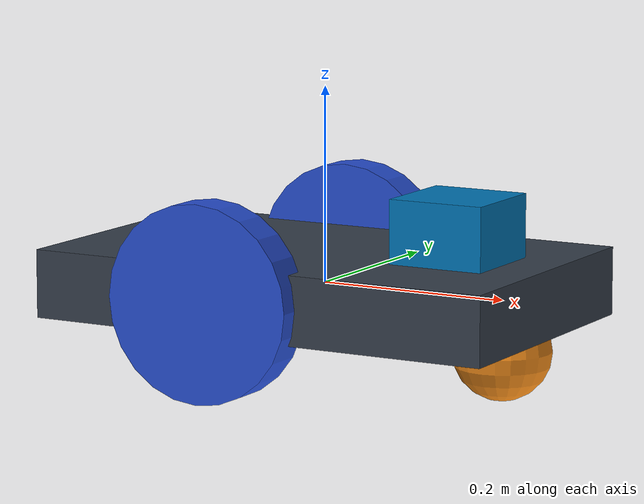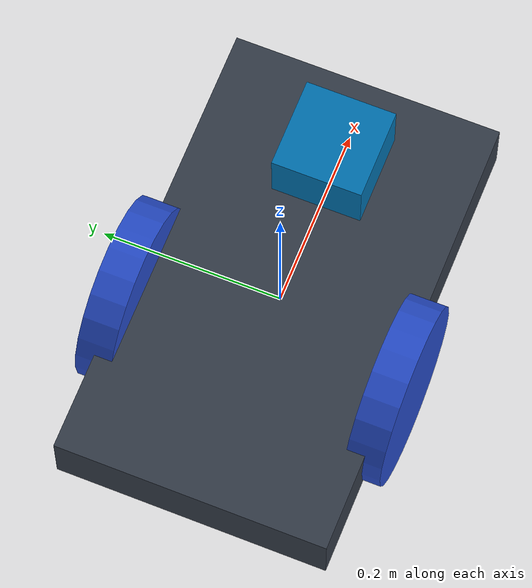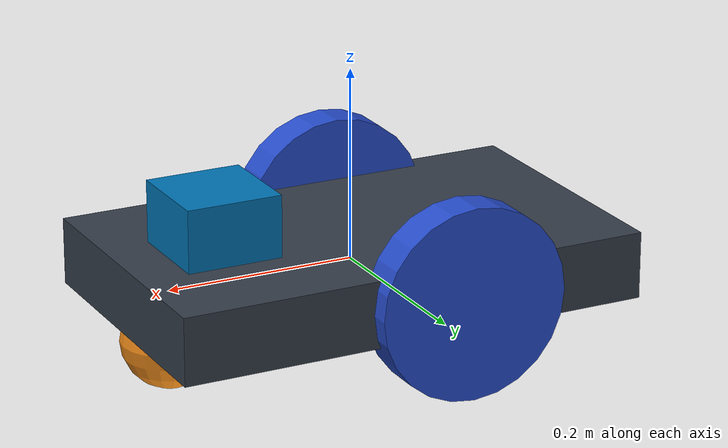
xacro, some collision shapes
<?xml version="1.0" ?>

<robot name="robot" xmlns:xacro="https://www.ros.org/wiki/xacro" >

  <xacro:property name="cameraSize" value="0.05"/>
  <xacro:property name="cameraMass" value="0.1"/>

  <material name="black">
    <color rgba="0.0 0.0 0.0 1.0"/>
  </material>
  <material name="blue">
    <color rgba="0.203125 0.23828125 0.28515625 1.0"/>
  </material>
  <material name="green">
    <color rgba="0.0 0.8 0.0 1.0"/>
  </material>
  <material name="grey">
    <color rgba="0.2 0.2 0.2 1.0"/>
  </material>
  <material name="orange">
    <color rgba="1.0 0.423529411765 0.0392156862745 1.0"/>
  </material>
  <material name="brown">
    <color rgba="0.870588235294 0.811764705882 0.764705882353 1.0"/>
  </material>
  <material name="red">
    <color rgba="0.80078125 0.12890625 0.1328125 1.0"/>
  </material>
  <material name="white">
    <color rgba="1.0 1.0 1.0 1.0"/>
  </material>

  <gazebo reference="link_chassis">
    <material>Gazebo/Orange</material>
  </gazebo>
  <gazebo reference="link_left_wheel">
    <material>Gazebo/Blue</material>
  </gazebo>
  <gazebo reference="link_right_wheel">
    <material>Gazebo/Blue</material>
  </gazebo>

  <link name="link_chassis">
    <!-- pose and inertial -->
    <pose>0 0 0.1 0 0 0</pose>

    <inertial>
      <mass value="5"/>
      <origin rpy="0 0 0" xyz="0 0 0.1"/>
      <inertia ixx="0.0395416666667" ixy="0" ixz="0" iyy="0.106208333333" iyz="0" izz="0.106208333333"/>
    </inertial>

    <collision name="collision_chassis">
      <geometry>
        <box size="0.5 0.3 0.07"/>
      </geometry>
    </collision>

    <visual>
      <origin rpy="0 0 0" xyz="0 0 0"/>
      <geometry>
        <box size="0.5 0.3 0.07"/>
      </geometry>
      <material name="blue"/>
    </visual>

    <!-- caster front -->
    <collision name="caster_front_collision">
      <origin rpy=" 0 0 0" xyz="0.35 0 -0.05"/>
      <geometry>
        <sphere radius="0.05"/>
      </geometry>
      <surface>
        <friction>
          <ode>
            <mu>0</mu>
            <mu2>0</mu2>
            <slip1>1.0</slip1>
            <slip2>1.0</slip2>
          </ode>
        </friction>
      </surface>
    </collision>
    <visual name="caster_front_visual">
      <origin rpy=" 0 0 0" xyz="0.2 0 -0.05"/>
      <geometry>
        <sphere radius="0.05"/>
      </geometry>
    </visual>
    </link>

  <!-- Create wheel right -->

  <link name="link_right_wheel">
    <inertial>
      <mass value="0.2"/>
      <origin rpy="0 1.5707 1.5707" xyz="0 0 0"/>
      <inertia ixx="0.00052666666" ixy="0" ixz="0" iyy="0.00052666666" iyz="0" izz="0.001"/>
    </inertial>

    <collision name="link_right_wheel_collision">
      <origin rpy="0 1.5707 1.5707" xyz="0 0 0" />
      <geometry>
        <cylinder length="0.04" radius="0.1"/>
      </geometry>
    </collision>

    <visual name="link_right_wheel_visual">
      <origin rpy="0 1.5707 1.5707" xyz="0 0 0"/>
      <geometry>
        <cylinder length="0.04" radius="0.1"/>
      </geometry>
    </visual>

  </link>

  <!--   Joint for right wheel  -->
  <joint name="joint_right_wheel" type="continuous">
    <origin rpy="0 0 0" xyz="-0.05 0.15 0"/>
    <child link="link_right_wheel" />
    <parent link="link_chassis"/>
    <axis rpy="0 0 0" xyz="0 1 0"/>
    <limit effort="10000" velocity="1000"/>
    <joint_properties damping="1.0" friction="1.0" />
  </joint>

  <!-- Left Wheel link -->

  <link name="link_left_wheel">
    <inertial>
      <mass value="0.2"/>
      <origin rpy="0 1.5707 1.5707" xyz="0 0 0"/>
      <inertia ixx="0.00052666666" ixy="0" ixz="0" iyy="0.00052666666" iyz="0" izz="0.001"/>
    </inertial>

    <collision name="link_left_wheel_collision">
      <origin rpy="0 1.5707 1.5707" xyz="0 0 0" />
      <geometry>
        <cylinder length="0.04" radius="0.1"/>
      </geometry>
    </collision>

    <visual name="link_left_wheel_visual">
      <origin rpy="0 1.5707 1.5707" xyz="0 0 0"/>
      <geometry>
        <cylinder length="0.04" radius="0.1"/>
      </geometry>
    </visual>

  </link>

  <!--   Joint for left wheel  -->
  <joint name="joint_left_wheel" type="continuous">
    <origin rpy="0 0 0" xyz="-0.05 -0.15 0"/>
    <child link="link_left_wheel" />
    <parent link="link_chassis"/>
    <axis rpy="0 0 0" xyz="0 1 0"/>
    <limit effort="10000" velocity="1000"/>
    <joint_properties damping="1.0" friction="1.0" />
  </joint>

  <link name="camera">
    <collision>
      <origin xyz="0 0 0" rpy="0 0 0"/>
      <geometry>
        <box size="${cameraSize} ${cameraSize} ${cameraSize}"/>
      </geometry>
    </collision>

    <visual>
      <origin xyz="0 0 0" rpy="0 0 0"/>
      <geometry>
        <box size="${cameraSize} ${cameraSize} ${cameraSize}"/>
      </geometry>
      <material name="green"/>
    </visual>

    <inertial>
      <mass value="${cameraMass}" />
      <origin xyz="0 0 0" rpy="0 0 0"/>
      <box_inertia m="${cameraMass}" x="${cameraSize}" y="${cameraSize}" z="${cameraSize}" />
      <inertia ixx="1e-6" ixy="0" ixz="0" iyy="1e-6" iyz="0" izz="1e-6" />
    </inertial>
  </link>

  <joint name="camera_joint" type="fixed">
    <axis xyz="0 1 0" />
    <origin xyz=".2 0 0" rpy="0 0 0"/>
    <parent link="link_chassis"/>
    <child link="camera"/>
  </joint>

  <link name="hokuyo">
    <collision>
      <origin xyz="0 0 0" rpy="0 0 0"/>
      <geometry>
    <box size="0.1 0.1 0.1"/>
      </geometry>
    </collision>

    <visual>
      <origin xyz="0 0 0" rpy="0 0 0"/>
      <geometry>
        <mesh filename="package://mobile_robot_system/meshes/hokuyo.dae"/>
      </geometry>
    </visual>

    <inertial>
      <mass value="1e-5" />
      <origin xyz="0 0 0" rpy="0 0 0"/>
      <inertia ixx="1e-6" ixy="0" ixz="0" iyy="1e-6" iyz="0" izz="1e-6" />
    </inertial>
  </link>

   <joint name="hokuyo_joint" type="fixed">
    <axis xyz="0 1 0" />
    <origin xyz=".15 0 0.05" rpy="0 0 0"/>
    <parent link="link_chassis"/>
    <child link="hokuyo"/>
  </joint>

<gazebo>
    <plugin filename="libgazebo_ros_diff_drive.so" name="differential_drive_controller">
      <alwaysOn>true</alwaysOn>
      <updateRate>20</updateRate>
      <leftJoint>joint_left_wheel</leftJoint>
      <rightJoint>joint_right_wheel</rightJoint>
      <wheelSeparation>0.4</wheelSeparation>
      <wheelDiameter>0.2</wheelDiameter>
      <torque>0.1</torque>
      <commandTopic>cmd_vel</commandTopic>
      <odometryTopic>odom</odometryTopic>
      <odometryFrame>odom</odometryFrame>
      <robotBaseFrame>link_chassis</robotBaseFrame>
      <publishWheelTF>true</publishWheelTF>
       <publishOdomTF>true</publishOdomTF>
      <publishWheelJointState>true</publishWheelJointState>
      <rosDebugLevel>na</rosDebugLevel>
      <wheelAcceleration>0</wheelAcceleration>
      <wheelTorque>5</wheelTorque>
      <odometrySource>1</odometrySource>
    </plugin>
  </gazebo>

  <gazebo reference="camera">
    <material>Gazebo/Green</material>
    <sensor type="camera" name="camera1">
      <update_rate>30.0</update_rate>
      <camera name="head">
        <horizontal_fov>1.3962634</horizontal_fov>
        <image>
          <width>800</width>
          <height>800</height>
          <format>R8G8B8</format>
        </image>
        <clip>
          <near>0.02</near>
          <far>300</far>
        </clip>
      </camera>
      <plugin name="camera_controller" filename="libgazebo_ros_camera.so">
        <alwaysOn>true</alwaysOn>
        <updateRate>0.0</updateRate>
        <cameraName>camera</cameraName>
        <imageTopicName>/image_raw</imageTopicName>
        <cameraInfoTopicName>/camera_info</cameraInfoTopicName>
        <frameName>camera</frameName>
        <hackBaseline>0.07</hackBaseline>
        <distortionK1>0.0</distortionK1>
        <distortionK2>0.0</distortionK2>
        <distortionK3>0.0</distortionK3>
        <distortionT1>0.0</distortionT1>
        <distortionT2>0.0</distortionT2>
      </plugin>
    </sensor>
  </gazebo>

  <gazebo reference="hokuyo">
    <sensor type="gpu_ray" name="head_hokuyo_sensor">
      <pose>0 0 0.09 0 0 0</pose>
      <visualize>true</visualize>
      <update_rate>1800</update_rate>
      <ray>
        <scan>
          <horizontal>
            <samples>360</samples>
            <resolution>1</resolution>
            <min_angle>0.000000</min_angle>
            <max_angle>6.280000</max_angle>
          </horizontal>
        </scan>
        <range>
          <min>0.10</min>
          <max>3.5</max>
          <resolution>0.01</resolution>
        </range>
        <noise>
          <type>gaussian</type>
          <mean>0.0</mean>
          <stddev>0.01</stddev>
        </noise>
      </ray>
      <plugin name="gazebo_ros_head_hokuyo_controller" filename="libgazebo_ros_gpu_laser.so">
        <topicName>/scan</topicName>
        <frameName>hokuyo</frameName>
      </plugin>
    </sensor>
  </gazebo>

</robot>
